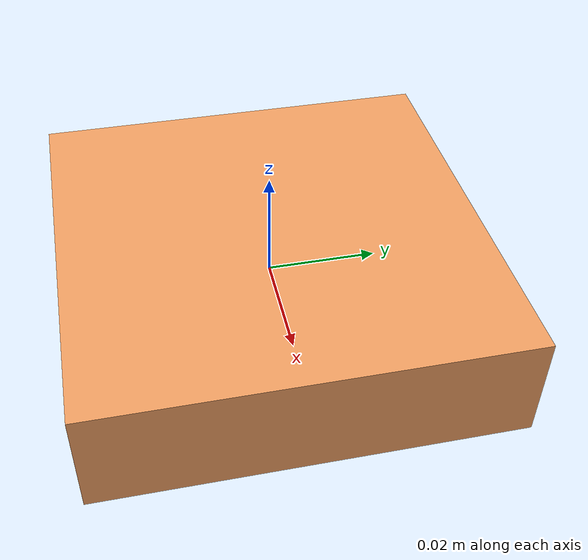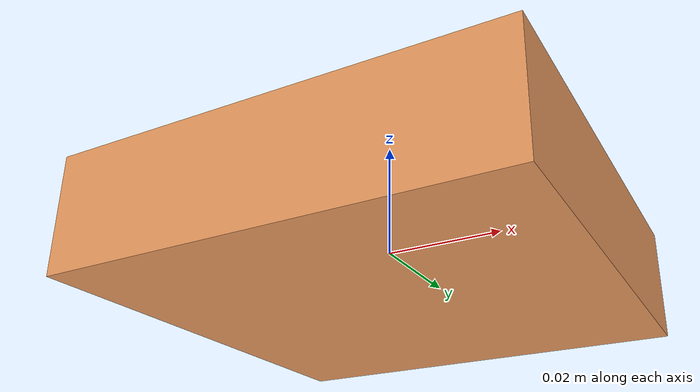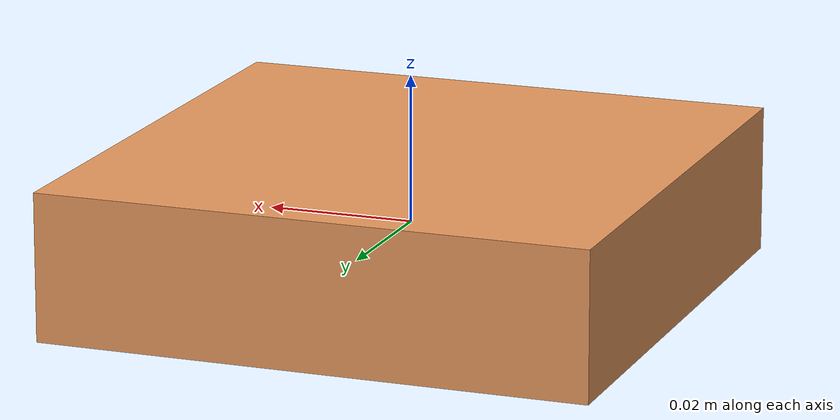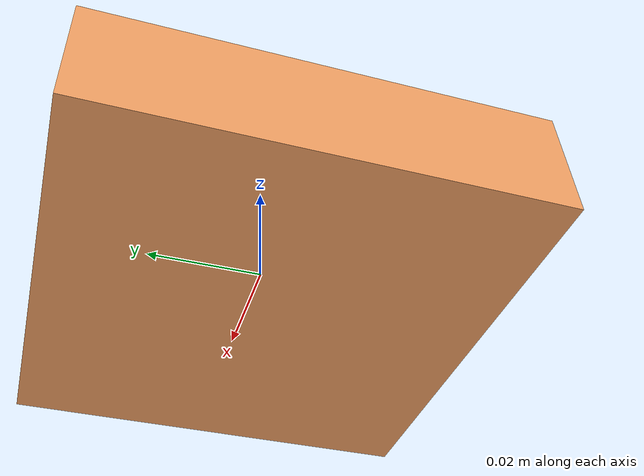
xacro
<?xml version="1.0"?>
<robot name="glove_hand" xmlns:xacro="http://ros.org/wiki/xacro">

  <xacro:property name="palm_width" value=".075" />
  <xacro:property name="palm_length" value=".075" />
  <xacro:property name="proximal_phalange_length" value=".03" />
  <xacro:property name="proximal_phalanx_length" value=".03" />
  <xacro:property name="middle_phalange_length" value=".025" />
  <xacro:property name="distal_phalange_length" value=".021" />
  <xacro:property name="distal_phalanx_length" value=".028" />
  <xacro:property name="pi" value="3.1415" />

  <material name="base">
    <color rgba="0.0 0.0 0.0 1"/>
  </material>

  <material name="skin">
    <color rgba=".91 .60 .37 1"/>
    <!--color rgba="0.0 1.0 0.0 1"/-->
  </material>

  <link name="glove_link">
    <visual>
      <geometry>
        <box size=".005 .005 .005"/>
      </geometry>
      <material name="base"/>
    </visual>
  </link>

  <link name="palm_link">
    <visual>
      <geometry>
        <box size="${palm_length} ${palm_width} .02"/>
      </geometry>
      <material name="skin"/>
    </visual>
  </link>

  <xacro:macro name="hand_segment" params="name len">
    <link name="${name}">
      <visual>
        <geometry>
          <cylinder length="${len}" radius=".006"/>
        </geometry>
        <origin xyz="${len/2} 0 0" rpy="0 ${pi/2} 0"/>
        <material name="skin"/>
      </visual>
    </link>
  </xacro:macro>

  <joint name="palm_joint" type="continuous">
    <parent link="glove_link"/>
    <child link="palm_link"/>
  </joint>

  <xacro:macro name="hand_joint" params="name parent child">
    <joint name="${name}" type="continuous">
      <parent link="${parent}"/>
      <child link="${child}"/>
    </joint>
  </xacro:macro>

  <!-- Thumb -->
  <xacro:hand_segment name="proximal_phalanx_link_1" len="${proximal_phalanx_length}"/>
  <xacro:hand_joint name="proximal_phalanx_1" parent="palm_link" child="proximal_phalanx_link_1"/>

  <xacro:hand_segment name="distal_phalanx_link_1" len="${distal_phalanx_length}"/>
  <xacro:hand_joint name="distal_phalanx_1" parent="proximal_phalanx_link_1" child="distal_phalanx_link_1"/>

  <!-- Index finger -->
  <xacro:hand_segment name="proximal_phalange_link_1" len="${proximal_phalange_length}"/>
  <xacro:hand_joint name="proximal_phalange_1" parent="palm_link" child="proximal_phalange_link_1"/>

  <xacro:hand_segment name="middle_phalange_link_1" len="${middle_phalange_length}"/>
  <xacro:hand_joint name="middle_phalange_1" parent="proximal_phalange_link_1" child="middle_phalange_link_1"/>

  <xacro:hand_segment name="distal_phalange_link_1" len="${distal_phalange_length}"/>
  <xacro:hand_joint name="distal_phalange_1" parent="middle_phalange_link_1" child="distal_phalange_link_1"/>

  <!-- Middle finger -->
  <xacro:hand_segment name="proximal_phalange_link_2" len="${proximal_phalange_length}"/>
  <xacro:hand_joint name="proximal_phalange_2" parent="palm_link" child="proximal_phalange_link_2"/>

  <xacro:hand_segment name="middle_phalange_link_2" len="${middle_phalange_length}"/>
  <xacro:hand_joint name="middle_phalange_2" parent="proximal_phalange_link_2" child="middle_phalange_link_2"/>

  <xacro:hand_segment name="distal_phalange_link_2" len="${distal_phalange_length}"/>
  <xacro:hand_joint name="distal_phalange_2" parent="middle_phalange_link_2" child="distal_phalange_link_2"/>

  <!-- Ring finger -->
  <xacro:hand_segment name="proximal_phalange_link_3" len="${proximal_phalange_length}"/>
  <xacro:hand_joint name="proximal_phalange_3" parent="palm_link" child="proximal_phalange_link_3"/>

  <xacro:hand_segment name="middle_phalange_link_3" len="${middle_phalange_length}"/>
  <xacro:hand_joint name="middle_phalange_3" parent="proximal_phalange_link_3" child="middle_phalange_link_3"/>

  <xacro:hand_segment name="distal_phalange_link_3" len="${distal_phalange_length}"/>
  <xacro:hand_joint name="distal_phalange_3" parent="middle_phalange_link_3" child="distal_phalange_link_3"/>

  <!-- Pinky finger -->
  <xacro:hand_segment name="proximal_phalange_link_4" len="${proximal_phalange_length}"/>
  <xacro:hand_joint name="proximal_phalange_4" parent="palm_link" child="proximal_phalange_link_4"/>

  <xacro:hand_segment name="middle_phalange_link_4" len="${middle_phalange_length}"/>
  <xacro:hand_joint name="middle_phalange_4" parent="proximal_phalange_link_4" child="middle_phalange_link_4"/>

  <xacro:hand_segment name="distal_phalange_link_4" len="${distal_phalange_length}"/>
  <xacro:hand_joint name="distal_phalange_4" parent="middle_phalange_link_4" child="distal_phalange_link_4"/>

  <!-- Gazebo plugin for ROS Control -->
  <gazebo>
    <plugin name="gazebo_ros_control" filename="libgazebo_ros_control.so">
      <robotNamespace>/</robotNamespace>
    </plugin>
  </gazebo>
</robot>
